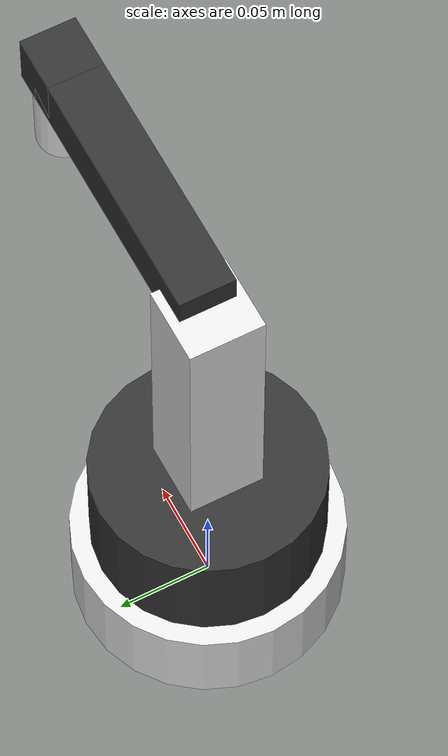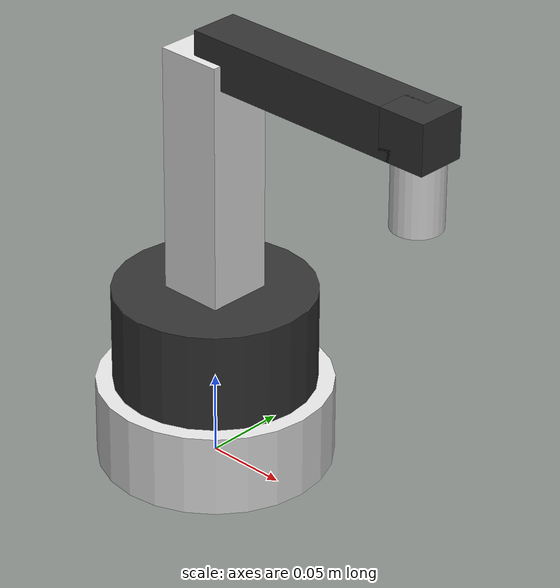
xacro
<?xml version="1.0"?>
<!-- Generated by Google Gemini-->
<robot name="dobot_magician_lite">

  <material name="white">
    <color rgba="0.9 0.9 0.9 1"/>
  </material>
  <material name="black">
    <color rgba="0.2 0.2 0.2 1"/>
  </material>

  <link name="base_link">
    <visual>
      <geometry>
        <cylinder radius="0.07" length="0.05"/>
      </geometry>
      <origin xyz="0 0 0.025" rpy="0 0 0"/>
      <material name="white"/>
    </visual>
  </link>

  <joint name="joint1" type="revolute">
    <parent link="base_link"/>
    <child link="link1"/>
    <origin xyz="0 0 0.05" rpy="0 0 0"/>
    <axis xyz="0 0 1"/>
    <limit lower="-2.35" upper="2.35" effort="10.0" velocity="1.0"/>
  </joint>

  <link name="link1">
    <visual>
      <geometry>
        <cylinder radius="0.06" length="0.06"/>
      </geometry>
      <origin xyz="0 0 0.03" rpy="0 0 0"/>
      <material name="black"/>
    </visual>
  </link>

  <joint name="joint2" type="revolute">
    <parent link="link1"/>
    <child link="link2"/>
    <origin xyz="0 0 0.06" rpy="0 0 0"/>
    <axis xyz="0 1 0"/>
    <limit lower="-0.08" upper="1.48" effort="10.0" velocity="1.0"/>
  </joint>

  <link name="link2">
    <visual>
      <geometry>
        <box size="0.04 0.04 0.15"/>
      </geometry>
      <origin xyz="0 0 0.075" rpy="0 0 0"/>
      <material name="white"/>
    </visual>
  </link>

  <joint name="joint3" type="revolute">
    <parent link="link2"/>
    <child link="link3"/>
    <origin xyz="0 0 0.15" rpy="0 0 0"/>
    <axis xyz="0 1 0"/>
    <limit lower="-0.17" upper="1.57" effort="10.0" velocity="1.0"/>
  </joint>

  <link name="link3">
    <visual>
      <geometry>
        <box size="0.15 0.03 0.03"/>
      </geometry>
      <origin xyz="0.075 0 0" rpy="0 0 0"/>
      <material name="black"/>
    </visual>
  </link>

  <link name="dummy_leveling_link"/>

  <joint name="passive_leveling_joint1" type="revolute">
    <parent link="link3"/>
    <child link="dummy_leveling_link"/>
    <origin xyz="0.15 0 0" rpy="0 0 0"/>
    <axis xyz="0 1 0"/>
    <limit lower="-3.14" upper="3.14" effort="10.0" velocity="1.0"/>
    <mimic joint="joint2" multiplier="-1.0" offset="0.0"/>
  </joint>

  <link name="level_wrist_link">
    <visual>
      <geometry>
        <box size="0.03 0.03 0.03"/>
      </geometry>
      <origin xyz="0 0 0" rpy="0 0 0"/>
      <material name="black"/>
    </visual>
  </link>

  <joint name="passive_leveling_joint2" type="revolute">
    <parent link="dummy_leveling_link"/>
    <child link="level_wrist_link"/>
    <origin xyz="0 0 0" rpy="0 0 0"/>
    <axis xyz="0 1 0"/>
    <limit lower="-3.14" upper="3.14" effort="10.0" velocity="1.0"/>
    <mimic joint="joint3" multiplier="-1.0" offset="0.0"/>
  </joint>

  <joint name="joint4" type="revolute">
    <parent link="level_wrist_link"/>
    <child link="end_effector"/>
    <origin xyz="0 0 -0.015" rpy="0 0 0"/>
    <axis xyz="0 0 1"/>
    <limit lower="-2.5" upper="2.5" effort="10.0" velocity="1.0"/>
  </joint>

  <link name="end_effector">
    <visual>
      <geometry>
        <cylinder radius="0.015" length="0.04"/>
      </geometry>
      <origin xyz="0 0 -0.02" rpy="0 0 0"/>
      <material name="white"/>
    </visual>
  </link>

</robot>
